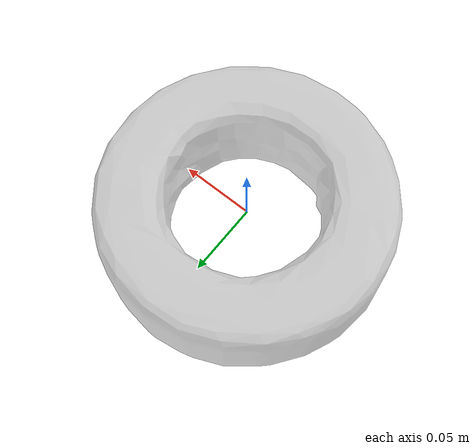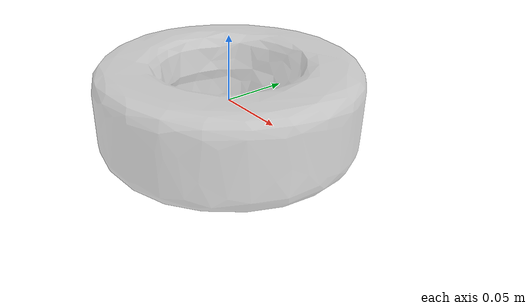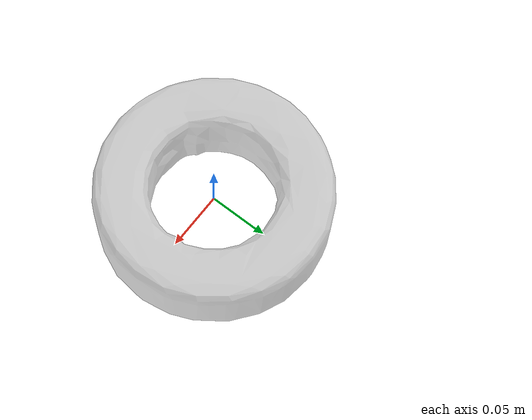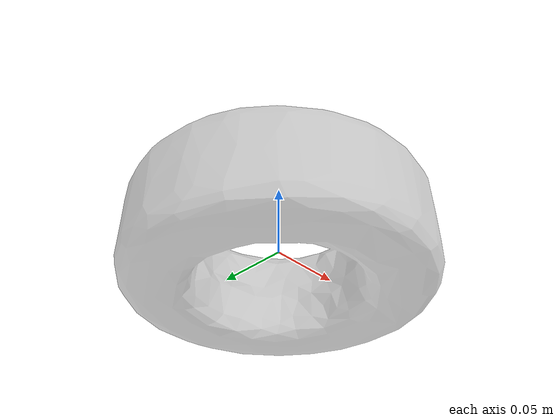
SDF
<?xml version='1.0'?>
<sdf version='1.4'>
  <model name="object">
    <link name='link'>
      <pose>0.0 0 0 0 0 0</pose>
      <inertial>
        <mass>1.325528</mass>
        <inertia>
          <ixx>0.00441473</ixx>
          <ixy>-0.00000545</ixy>
          <ixz>0.00001049</ixz>
          <iyy>0.00441800</iyy>
          <iyz>0.00000331</iyz>
          <izz>0.00795406</izz>
        </inertia>
      </inertial>
      <collision name='c_tp_000'>
        <geometry>
          <mesh>
            <scale>1 1 1</scale>
            <uri>model://tape_poisson_000/mesh/tape_poisson_000.dae</uri>
          </mesh>
        </geometry>
        <surface>
          <contact>
            <ode>
              <kp>100000</kp>
              <kd>100</kd>
              <max_vel>1000.0</max_vel>
            </ode>
          </contact>
        </surface>
      </collision>

      <visual name='v_tp_000'>
        <geometry>
          <mesh>
            <scale>1 1 1</scale>
            <uri>model://tape_poisson_000/mesh/tape_poisson_000.dae</uri>
          </mesh>
        </geometry>
        <material>
          <script>
            <name>Gazebo/GreyTransparent</name>
            <uri>file://media/materials/scripts/gazebo.material</uri>
          </script>
        </material>
      </visual>

      <velocity_decay>
        <linear>0.0004</linear>
        <angular>0.0004</angular>
      </velocity_decay>
    </link>
  </model>
</sdf>
